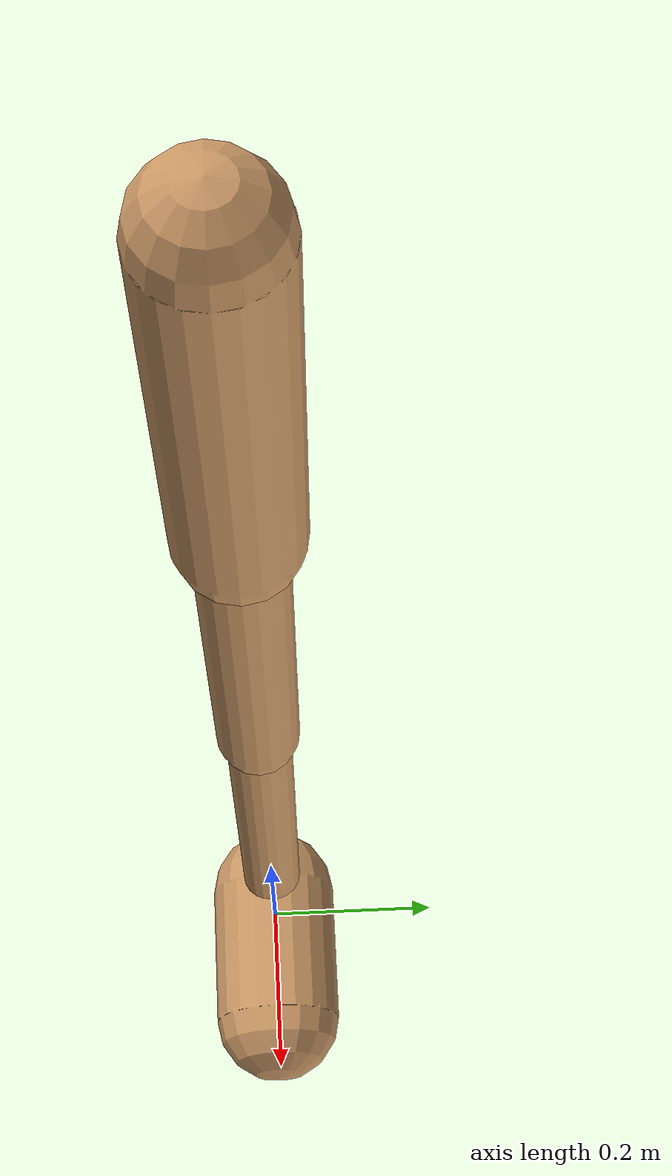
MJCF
<mujoco model="walker2d">
  <compiler angle="degree" coordinate="global" inertiafromgeom="true" />
  <default>
    <joint armature="0.01" damping=".1" limited="true" />
    <geom conaffinity="0" condim="3" contype="1" density="1000" friction="0.8 .1 .1" rgba="0.8 0.6 .4 1" />
  </default>
  <option integrator="RK4" timestep="0.002" />
  <worldbody>

    <body name="torso" pos="0 0 -0.04654620743655468">
      <joint armature="0" axis="1 0 0" damping="0" limited="false" name="ignorex" pos="0 0 0" stiffness="0" type="slide" />
      <joint armature="0" axis="0 0 1" damping="0" limited="false" name="ignorez" pos="0 0 0" ref="1.25" stiffness="0" type="slide" />
      <joint armature="0" axis="0 1 0" damping="0" limited="false" name="ignorey" pos="0 0 0" stiffness="0" type="hinge" />
      <geom fromto="0 0 1.45 0 0 1.05" name="torso_geom" size="0.058167892036174264" type="capsule" />
      <body name="thigh">
        <joint axis="0 -1 0" name="thigh_joint" pos="0 0 1.05" range="-150 0" type="hinge" />
        <geom fromto="0.0 0.0 1.05 0.0 0.0 0.6220482035225785" name="thigh_geom" size="0.04223185319204632" type="capsule" />
        <body name="leg" pos="0.0 0.0 0.022048203522578524">
          <joint axis="0 -1 0" name="leg_joint" pos="0 0 0.6" range="-150 0" type="hinge" />
          <geom fromto="0.0 0.0 0.6 0.0 0.0 0.12449800391397615" name="leg_geom" size="0.03378548255363706" type="capsule" />
          <body name="foot" pos="0.0 0.0 0.02449800391397615">
            <joint axis="0 -1 0" name="foot_joint" pos="0 0 0.1" range="-45 45" type="hinge" />
            <geom fromto="0.0 0.0 0.1 0.16551412869200266 0.0 0.1" name="foot_geom" size="0.07409703745561003" type="capsule" />
          </body>
        </body>
      </body>

      <body name="thigh_left">
        <joint axis="0 -1 0" name="thigh_left_joint" pos="0 0 1.05" range="-150 0" type="hinge" />
        <geom fromto="0.0 0.0 1.05 0.0 0.0 0.6220482035225785" name="thigh_left_geom" rgba=".7 .3 .6 1" size="0.04223185319204632" type="capsule" />
        <body name="leg_left" pos="0.0 0.0 0.022048203522578524">
          <joint axis="0 -1 0" name="leg_left_joint" pos="0 0 0.6" range="-150 0" type="hinge" />
          <geom fromto="0.0 0.0 0.6 0.0 0.0 0.12449800391397615" name="leg_left_geom" rgba=".7 .3 .6 1" size="0.03378548255363706" type="capsule" />
          <body name="foot_left" pos="0.0 0.0 0.02449800391397615">
            <joint axis="0 -1 0" name="foot_left_joint" pos="0 0 0.1" range="-45 45" type="hinge" />
            <geom fromto="0.0 0.0 0.1 0.16551412869200266 0.0 0.1" name="foot_left_geom" rgba=".7 .3 .6 1" size="0.07409703745561003" type="capsule" />
          </body>
        </body>
      </body>
    </body>
  </worldbody>
  <actuator>

    <motor ctrllimited="true" ctrlrange="-1.0 1.0" gear="100" joint="thigh_joint" />
    <motor ctrllimited="true" ctrlrange="-1.0 1.0" gear="100" joint="leg_joint" />
    <motor ctrllimited="true" ctrlrange="-1.0 1.0" gear="100" joint="foot_joint" />
    <motor ctrllimited="true" ctrlrange="-1.0 1.0" gear="100" joint="thigh_left_joint" />
    <motor ctrllimited="true" ctrlrange="-1.0 1.0" gear="100" joint="leg_left_joint" />
    <motor ctrllimited="true" ctrlrange="-1.0 1.0" gear="100" joint="foot_left_joint" />

  </actuator>
</mujoco>
